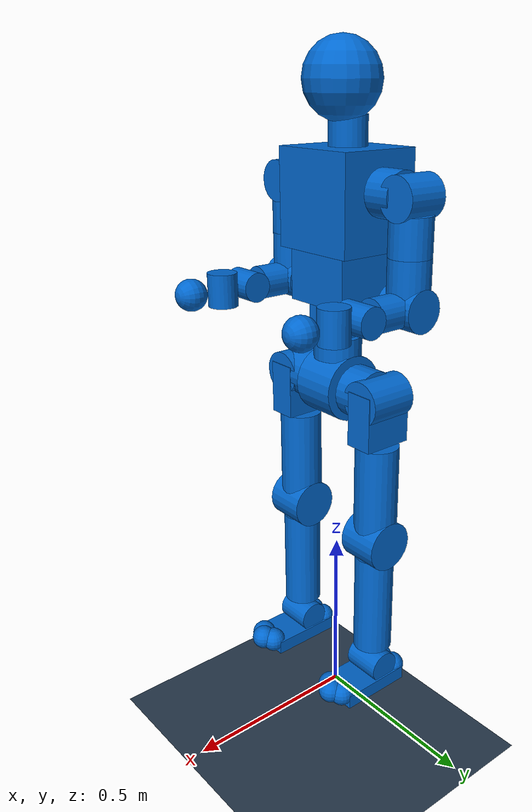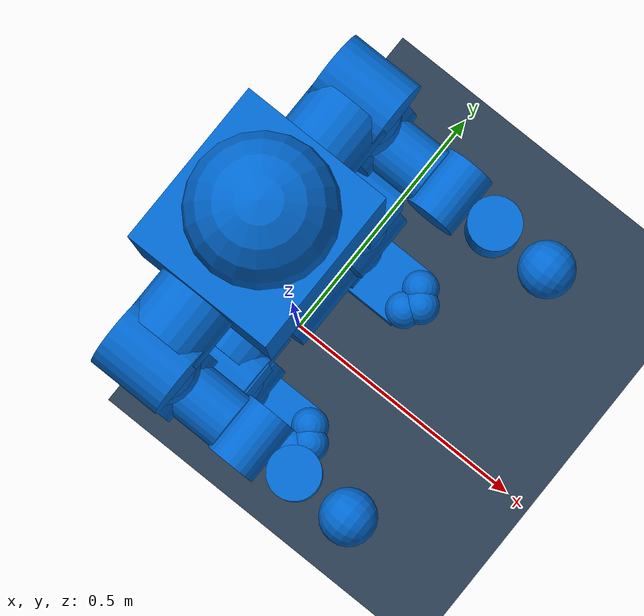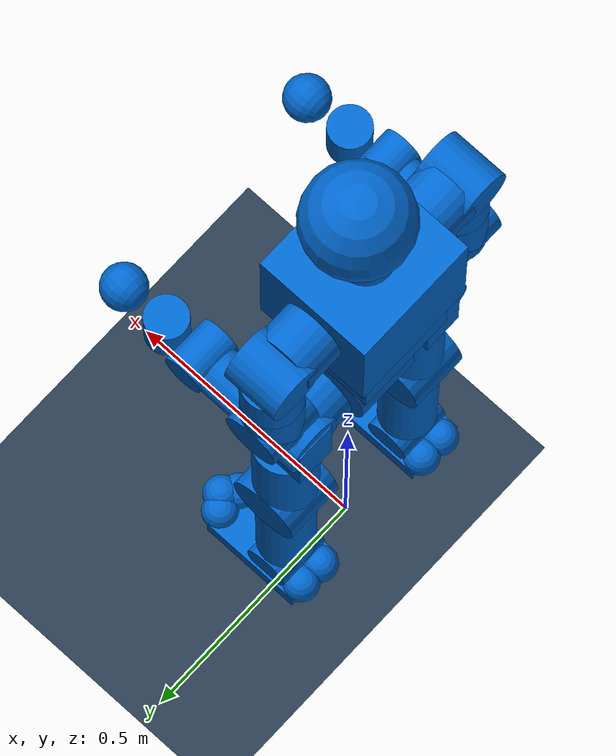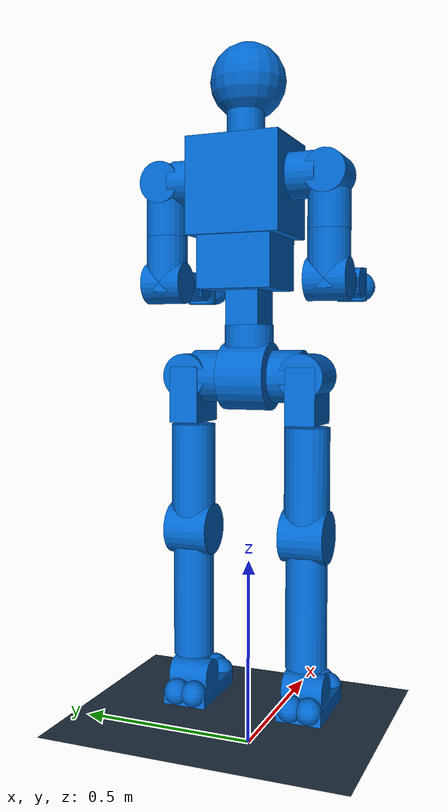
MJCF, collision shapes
<mujoco model="B-20250522">
    <default>
        <default class="robot">
            <default class="motor">
                <joint/>
                <motor/>
            </default>
            <default class="visual">
                <geom material="default_material" contype="0" conaffinity="0" group="2"/>
            </default>
            <default class="collision">
                <geom material="collision_material" condim="3" contype="0" conaffinity="1" solref="0.005 1"
                      friction="1 0.01 0.001" density="0" group="1"/>
            </default>
        </default>
    </default>
    <compiler angle="radian" meshdir="./meshes/"/>
    <compiler autolimits="true"/>
    <asset>
        <material name="default_material" rgba="0.7 0.7 0.7 1"/>
        <material name="collision_material" rgba="0.0 0.4 0.8 0.2"/>
        <mesh name="base" file="base.stl"/>
        <mesh name="waist_z" file="waist_z.stl"/>
        <mesh name="waist_x" file="waist_x.stl"/>
        <mesh name="body" file="body.stl"/>
        <mesh name="shoulder_y" file="shoulder_y.stl"/>
        <mesh name="shoulder_x" file="shoulder_x.stl"/>
        <mesh name="shoulder_z" file="shoulder_z.stl"/>
        <mesh name="elbow" file="elbow.stl"/>
        <mesh name="wrist_z" file="wrist_z.stl"/>
        <mesh name="wrist_y" file="wrist_y.stl"/>
        <mesh name="wrist_x" file="wrist_x.stl"/>
        <mesh name="hip_y" file="hip_y.stl"/>
        <mesh name="hip_x" file="hip_x.stl"/>
        <mesh name="hip_z" file="hip_z.stl"/>
        <mesh name="knee" file="knee.stl"/>
        <mesh name="ankle_y" file="ankle_y.stl"/>
        <mesh name="ankle_x" file="ankle_x.stl"/>

        <texture name="texplane" type="2d" builtin="checker" rgb1=".2 .3 .4" rgb2=".1 0.15 0.2"
                 width="512" height="512"/>
        <material name='MatPlane' reflectance='0.3' texture="texplane" texrepeat="1 1" texuniform="true"/>
    </asset>

    <worldbody>
        <!-- 灯光 -->
        <light directional="true" pos="-0.5 0.5 3" dir="0 0 -1"/>
        <geom name='floor' pos='0 0 0' size='50 50 .125' type='plane' material="MatPlane" condim='3'
              friction="1 0.01 0.01" group="0"/>

        <body name="base_link" pos="0 0. 1." quat="1 0 0 0" childclass="robot">
            <freejoint name="floating_base"/>
            <site name="imu_site" pos="0. 0. -0.068" size="0.005" rgba="1 0 0 1"/>
            <site name="base_site" pos="0 0 0" quat="1 0 0 0"/>

            <geom type="mesh" mesh="base" class="visual"/>
            <geom size="0.09 0.065" quat="0.707107 0.707107 0 0" type="cylinder" class="collision"/>
            <body name="waist_z_link" pos="0 0 0.176">
                <inertial pos="-0.0274148 -0.0025889 0.240264" quat="0.915195 -0.0186902 -0.0284229 0.401573"
                          mass="22.9667"
                          diaginertia="0.542799 0.536002 0.1746"/>
                <joint name="waist_z_joint" pos="0 0 0" axis="0 0 1" range="-3.6652 1.7453"
                       actuatorfrcrange="-107 107"/>
                <geom type="mesh" mesh="waist_z" class="visual"/>
                <geom size="0.065 0.03" pos="0 0 -0.07" type="cylinder" class="collision"/>
                <geom type="mesh" mesh="waist_x" class="visual"/>
                <geom size="0.06 0.045 0.07" pos="0 0 0.03" type="box" class="collision"/>
                <geom pos="0 0 0.114" quat="1 0 0 0" type="mesh" mesh="body" class="visual"/>
                <geom size="0.1 0.1 0.1875" pos="-0.025 0 0.239" type="box" class="collision"/>
                <geom size="0.115 0.125 0.125" pos="-0.025 0 0.314" type="box" class="collision"/>
                <geom size="0.05 0.05" pos="-0.029 0 0.464" type="cylinder" class="collision"/>
                <geom size="0.1" pos="-0.01 0 0.594" class="collision"/>
                <body name="left_shoulder_y_link" pos="-0.03 0.22635 0.339">
                    <inertial pos="-0.00283 -0.01423 -0.00089" quat="0.54528 0.545862 -0.456723 0.442842" mass="1.82215"
                              diaginertia="0.00402614 0.00386441 0.00252945"/>
                    <joint name="left_shoulder_y_joint" pos="0 0 0" axis="0 1 0" range="-3.3161 1.5708"
                           actuatorfrcrange="-107 107"/>
                    <geom quat="0.707107 -0.707107 0 0" type="mesh" mesh="shoulder_y" class="visual"/>
                    <geom size="0.06 0.05" pos="0 -0.075 0" quat="0.707107 0.707107 0 0" type="cylinder"
                          class="collision"/>
                    <body name="left_shoulder_x_link">
                        <inertial pos="0.00263 0 -0.05349" quat="0.680193 -0.193229 -0.193229 0.680193" mass="0.97689"
                                  diaginertia="0.0031 0.00274687 0.00214313"/>
                        <joint name="left_shoulder_x_joint" pos="0 0 0" axis="1 0 0" range="-0.43633 3.5779"
                               actuatorfrcrange="-107 107"/>
                        <geom type="mesh" mesh="shoulder_x" class="visual"/>
                        <geom size="0.055 0.05" pos="0 0 -0.09" type="cylinder" class="collision"/>
                        <geom size="0.055 0.055" quat="0.707107 0 0.707107 0" type="cylinder" class="collision"/>
                        <body name="left_shoulder_z_link" pos="0 0 -0.265">
                            <inertial pos="-0.00978 -0.00126 0.09022" quat="0.999153 0.02114 -0.02756 -0.022052"
                                      mass="1.9789" diaginertia="0.00921773 0.00904872 0.00366355"/>
                            <joint name="left_shoulder_z_joint" pos="0 0 0" axis="0 0 1" range="-2.9671 2.9671"
                                   actuatorfrcrange="-107 107"/>
                            <geom type="mesh" mesh="shoulder_z" class="visual"/>
                            <geom size="0.055 0.075" pos="0 0 0.05" type="cylinder" class="collision"/>
                            <body name="left_elbow_link" quat="0.707107 0 -0.707107 0">
                                <inertial pos="0.000299609 0.000651208 -0.113234"
                                          quat="0.996031 -0.00273113 -0.00201705 0.0889431" mass="4.20881"
                                          diaginertia="0.0464779 0.0462857 0.00517074"/>
                                <joint name="left_elbow_joint" pos="0 0 0" axis="0 1 0" range="-0.767945 1.74533"
                                       actuatorfrcrange="-107 107"/>
                                <geom type="mesh" mesh="elbow" class="visual"/>
                                <geom size="0.055 0.055" quat="0.707107 0.707107 0 0" type="cylinder"
                                      class="collision"/>
                                <geom size="0.045 0.075" pos="0 0 -0.05" type="cylinder" class="collision"/>
                                <geom pos="0 0 -0.16" quat="1 0 0 0" type="mesh" mesh="wrist_z" class="visual"/>
                                <geom size="0.04 0.0475" pos="0 0 -0.16" quat="0.707107 0.707107 0 0" type="cylinder"
                                      class="collision"/>
                                <geom pos="0 0 -0.16" type="mesh" mesh="wrist_y" class="visual"/>
                                <geom size="0.04 0.045" pos="0 0 -0.24" quat="0.707107 0 0.707107 0" type="cylinder"
                                      class="collision"/>
                                <geom pos="0 0 -0.24" quat="1 0 0 0" type="mesh" mesh="wrist_x" class="visual"/>
                                <geom size="0.0425" pos="0 0 -0.3375" class="collision"/>
                            </body>
                        </body>
                    </body>
                </body>

                <body name="right_shoulder_y_link" pos="-0.03 -0.22635 0.339">
                    <inertial pos="-0.00283 0.01423 0.00089" quat="0.537666 0.552004 -0.449614 0.451724" mass="1.82215"
                              diaginertia="0.00402595 0.00386463 0.00252942"/>
                    <joint name="right_shoulder_y_joint" pos="0 0 0" axis="0 1 0" range="-3.3161 1.5708"
                           actuatorfrcrange="-107 107"/>
                    <geom quat="0.707107 0.707107 0 0" type="mesh"
                          mesh="shoulder_y" class="visual"/>
                    <geom size="0.06 0.05" pos="0 0.075 0" quat="0.707107 0.707107 0 0" type="cylinder"
                          class="collision"/>
                    <body name="right_shoulder_x_link">
                        <inertial pos="0.00263 0 -0.05349" quat="0.680193 0.193229 0.193229 0.680193" mass="0.97689"
                                  diaginertia="0.0031 0.00274687 0.00214313"/>
                        <joint name="right_shoulder_x_joint" pos="0 0 0" axis="1 0 0" range="-3.5779 0.43633"
                               actuatorfrcrange="-107 107"/>
                        <geom type="mesh" mesh="shoulder_x" class="visual"/>
                        <geom size="0.055 0.05" pos="0 0 -0.09" type="cylinder" class="collision"/>
                        <geom size="0.055 0.055" quat="0.707107 0 0.707107 0" type="cylinder" class="collision"/>
                        <body name="right_shoulder_z_link" pos="0 0 -0.265">
                            <inertial pos="-0.00978 -0.00126 0.09022" quat="0.999153 0.02114 -0.02756 -0.022052"
                                      mass="1.9789" diaginertia="0.00921773 0.00904872 0.00366355"/>
                            <joint name="right_shoulder_z_joint" pos="0 0 0" axis="0 0 1" range="-2.9671 2.9671"
                                   actuatorfrcrange="-107 107"/>
                            <geom type="mesh" mesh="shoulder_z" class="visual"/>
                            <geom size="0.055 0.075" pos="0 0 0.05" type="cylinder" class="collision"/>
                            <body name="right_elbow_link" quat="0.707107 0 -0.707107 0">
                                <inertial pos="0.000299609 0.000651208 -0.113925"
                                          quat="0.991919 -0.00272957 -0.00196078 0.126826" mass="4.20881"
                                          diaginertia="0.0470904 0.0469528 0.00517075"/>
                                <joint name="right_elbow_joint" pos="0 0 0" axis="0 1 0" range="-0.767945 1.74533"
                                       actuatorfrcrange="-107 107"/>
                                <geom type="mesh" mesh="elbow" class="visual"/>
                                <geom size="0.055 0.055" quat="0.707107 0.707107 0 0" type="cylinder"
                                      class="collision"/>
                                <geom size="0.045 0.075" pos="0 0 -0.05" type="cylinder" class="collision"/>
                                <geom pos="0 0 -0.16" quat="1 0 0 0" type="mesh"
                                      mesh="wrist_z" class="visual"/>
                                <geom size="0.04 0.0475" pos="0 0 -0.16" quat="0.707107 0.707107 0 0" type="cylinder"
                                      class="collision"/>
                                <geom pos="0 0 -0.16" type="mesh"
                                      mesh="wrist_y" class="visual"/>
                                <geom size="0.04 0.045" pos="0 0 -0.24" quat="0.707107 0 0.707107 0" type="cylinder"
                                      class="collision"/>
                                <geom pos="0 0 -0.24" quat="1 0 0 0" type="mesh"
                                      mesh="wrist_x" class="visual"/>
                                <geom size="0.0425" pos="0 0 -0.3375" class="collision"/>
                            </body>
                        </body>
                    </body>
                </body>
            </body>
            <body name="left_hip_y_link" pos="0 0.162 0">
                <inertial pos="-0.00121 -0.01442 -0.0003" quat="0.763796 0.642733 -0.0552737 -0.0213256" mass="1.89927"
                          diaginertia="0.00366741 0.003418 0.00310459"/>
                <joint name="left_hip_y_joint" pos="0 0 0" axis="0 1 0" range="-2.7925 1.5708"
                       actuatorfrcrange="-413 413"/>
                <geom quat="4.48966e-11 1 0 0" type="mesh"
                      mesh="hip_y" class="visual"/>
                <geom size="0.07 0.04" pos="0 -0.05 0" quat="0.707107 0.707107 0 0" type="cylinder" class="collision"
                />
                <geom size="0.06 0.0675" quat="0.707107 0 0.707107 0" type="cylinder" class="collision"/>
                <body name="left_hip_x_link">
                    <inertial pos="0.00153 0.00791 -0.07015" quat="0.702158 -0.0477966 -0.0427511 0.709128"
                              mass="1.75097"
                              diaginertia="0.00954042 0.00724071 0.00534887"/>
                    <joint name="left_hip_x_joint" pos="0 0 0" axis="1 0 0" range="-0.43633 2.618"
                           actuatorfrcrange="-107 107"/>
                    <geom quat="4.48966e-11 0 0 1" type="mesh"
                          mesh="hip_x" class="visual"/>
                    <geom size="0.07 0.04 0.075" pos="0 0 -0.05" type="box" class="collision"/>
                    <body name="left_hip_z_link" pos="0 0 -0.142">
                        <inertial pos="-0.00126 0.00032 -0.04122" quat="0.999978 -0.000703661 0.00164653 0.00637947"
                                  mass="3.59517" diaginertia="0.0492207 0.0476398 0.0126795"/>
                        <joint name="left_hip_z_joint" pos="0 0 0" axis="0 0 1" range="-0.5236 3.6652"
                               actuatorfrcrange="-107 107"/>
                        <geom type="mesh" mesh="hip_z" class="visual"/>
                        <geom size="0.06 0.13" pos="0 0 -0.12" type="cylinder" class="collision"/>
                        <body name="left_knee_link" pos="0 0 -0.278">
                            <inertial pos="-0.00065 0.00024 -0.10231" quat="0.99888 0.002419 0.0146062 -0.0449355"
                                      mass="4.66882" diaginertia="0.0963486 0.0956174 0.00965401"/>
                            <joint name="left_knee_joint" pos="0 0 0" axis="0 1 0" range="-0.17453 2.5307"
                                   actuatorfrcrange="-413 413"/>
                            <geom type="mesh" mesh="knee" class="visual"/>
                            <geom size="0.07 0.06" quat="0.707107 0.707107 0 0" type="cylinder" class="collision"
                            />
                            <geom size="0.055 0.15" pos="0 0 -0.2" type="cylinder" class="collision"/>
                            <body name="left_ankle_y_link" pos="0 0 -0.41">
                                <inertial pos="0.00233 -0.00031 -0.00088" quat="0.147007 0.700314 0.0210594 0.698216"
                                          mass="1.4119" diaginertia="0.00191483 0.00182875 0.00171641"/>
                                <joint name="left_ankle_y_joint" pos="0 0 0" axis="0 1 0" range="-1.0472 0.7854"
                                       actuatorfrcrange="-107 107"/>
                                <geom type="mesh" mesh="ankle_y" class="visual"/>
                                <geom size="0.045 0.055" quat="0.707107 0.707107 0 0" type="cylinder" class="collision"
                                />
                                <body name="left_ankle_x_link">
                                    <inertial pos="0.05253 8e-05 -0.0295" quat="0.480731 0.519412 0.515511 0.48307"
                                              mass="1.78979" diaginertia="0.01056 0.0104471 0.00311293"/>
                                    <joint name="left_ankle_x_joint" pos="0 0 0" axis="1 0 0" range="-0.61087 0.61087"
                                           actuatorfrcrange="-31 31"/>
                                    <geom type="mesh" mesh="ankle_x" class="visual"/>
                                    <geom size="0.105 0.06 0.02" pos="0.035 0 -0.05" type="box" class="collision"
                                    />
                                    <geom size="0.035" pos="0.16 0 -0.03" class="collision"/>
                                    <geom size="0.035" pos="0.14 0.025 -0.035" class="collision"/>
                                    <geom size="0.035" pos="0.14 -0.025 -0.035" class="collision"/>
                                    <geom size="0.035" pos="-0.06 0.025 -0.035" class="collision"/>
                                    <geom size="0.035" pos="-0.06 -0.025 -0.035" class="collision"/>
                                </body>
                            </body>
                        </body>
                    </body>
                </body>
            </body>
            <body name="right_hip_y_link" pos="0 -0.162 0">
                <inertial pos="0.00121 0.01442 -0.0003" quat="0.642733 0.763796 -0.0213256 -0.0552737" mass="1.89927"
                          diaginertia="0.00366741 0.003418 0.00310459"/>
                <joint name="right_hip_y_joint" pos="0 0 0" axis="0 1 0" range="-2.7925 1.5708"
                       actuatorfrcrange="-413 413"/>
                <geom type="mesh" mesh="hip_y" class="visual"/>
                <geom size="0.07 0.04" pos="0 0.05 0" quat="0.707107 0.707107 0 0" type="cylinder" class="collision"/>
                <geom size="0.06 0.0675" quat="0.707107 0 0.707107 0" type="cylinder" class="collision"/>
                <body name="right_hip_x_link">
                    <inertial pos="-0.00153 -0.00791 -0.07015" quat="0.702158 0.0477966 0.0427511 0.709128"
                              mass="1.75097"
                              diaginertia="0.00954042 0.00724071 0.00534887"/>
                    <joint name="right_hip_x_joint" pos="0 0 0" axis="1 0 0" range="-2.618 0.43633"
                           actuatorfrcrange="-107 107"/>
                    <geom type="mesh" mesh="hip_x" class="visual"/>
                    <geom size="0.07 0.04 0.075" pos="0 0 -0.05" type="box" class="collision"/>
                    <body name="right_hip_z_link" pos="0 0 -0.142">
                        <inertial pos="-0.00126 0.00032 -0.04122" quat="0.999979 0.000726316 0.00163749 0.00627329"
                                  mass="3.59517" diaginertia="0.0492206 0.0476398 0.0126795"/>
                        <joint name="right_hip_z_joint" pos="0 0 0" axis="0 0 1" range="-3.6652 0.5236"
                               actuatorfrcrange="-107 107"/>
                        <geom type="mesh" mesh="hip_z" class="visual"/>
                        <geom size="0.06 0.13" pos="0 0 -0.12" type="cylinder" class="collision"/>
                        <body name="right_knee_link" pos="0 0 -0.278">
                            <inertial pos="-0.00065 0.00024 -0.10231" quat="0.99888 0.002419 0.0146062 -0.0449355"
                                      mass="4.66882" diaginertia="0.0963486 0.0956174 0.00965401"/>
                            <joint name="right_knee_joint" pos="0 0 0" axis="0 1 0" range="-0.17453 2.5307"
                                   actuatorfrcrange="-413 413"/>
                            <geom type="mesh" mesh="knee" class="visual"/>
                            <geom size="0.07 0.06" quat="0.707107 0.707107 0 0" type="cylinder" class="collision"
                            />
                            <geom size="0.055 0.15" pos="0 0 -0.2" type="cylinder" class="collision"/>
                            <body name="right_ankle_y_link" pos="0 0 -0.41">
                                <inertial pos="0.00233 -0.00031 0.00088" quat="0.137386 0.700402 -3.02034e-08 0.700402"
                                          mass="1.4119" diaginertia="0.00192392 0.00182 0.00171608"/>
                                <joint name="right_ankle_y_joint" pos="0 0 0" axis="0 1 0" range="-1.0472 0.7854"
                                       actuatorfrcrange="-107 107"/>
                                <geom type="mesh" mesh="ankle_y" class="visual"/>
                                <geom size="0.045 0.055" quat="0.707107 0.707107 0 0" type="cylinder" class="collision"
                                />
                                <body name="right_ankle_x_link">
                                    <inertial pos="0.05253 8e-05 -0.0295" quat="0.480731 0.519412 0.515511 0.48307"
                                              mass="1.78979" diaginertia="0.01056 0.0104471 0.00311293"/>
                                    <joint name="right_ankle_x_joint" pos="0 0 0" axis="1 0 0" range="-0.61087 0.61087"
                                           actuatorfrcrange="-31 31"/>
                                    <geom type="mesh" mesh="ankle_x" class="visual"/>
                                    <geom size="0.105 0.06 0.02" pos="0.035 0 -0.05" type="box" class="collision"
                                    />
                                    <geom size="0.035" pos="0.16 0 -0.03" class="collision"/>
                                    <geom size="0.035" pos="0.14 0.025 -0.035" class="collision"/>
                                    <geom size="0.035" pos="0.14 -0.025 -0.035" class="collision"/>
                                    <geom size="0.035" pos="-0.06 0.025 -0.035" class="collision"/>
                                    <geom size="0.035" pos="-0.06 -0.025 -0.035" class="collision"/>
                                </body>
                            </body>
                        </body>
                    </body>
                </body>
            </body>

        </body>
    </worldbody>
    <actuator>
        <motor name="waist_z_joint_ctrl" joint="waist_z_joint" class="motor" gear="1" ctrlrange="-107 107"/>
        <motor name="left_shoulder_y_joint_ctrl" joint="left_shoulder_y_joint" class="motor" gear="1"
               ctrlrange="-107 107"/>
        <motor name="left_shoulder_x_joint_ctrl" joint="left_shoulder_x_joint" class="motor" gear="1"
               ctrlrange="-107 107"/>
        <motor name="left_shoulder_z_joint_ctrl" joint="left_shoulder_z_joint" class="motor" gear="1"
               ctrlrange="-107 107"/>
        <motor name="left_elbow_joint_ctrl" joint="left_elbow_joint" class="motor" gear="1" ctrlrange="-107 107"/>

        <motor name="right_shoulder_y_joint_ctrl" joint="right_shoulder_y_joint" class="motor" gear="1"
               ctrlrange="-107 107"/>
        <motor name="right_shoulder_x_joint_ctrl" joint="right_shoulder_x_joint" class="motor" gear="1"
               ctrlrange="-107 107"/>
        <motor name="right_shoulder_z_joint_ctrl" joint="right_shoulder_z_joint" class="motor" gear="1"
               ctrlrange="-107 107"/>
        <motor name="right_elbow_joint_ctrl" joint="right_elbow_joint" class="motor" gear="1" ctrlrange="-107 107"/>

        <motor name="left_hip_y_joint_ctrl" joint="left_hip_y_joint" class="motor" gear="1" ctrlrange="-413 413"/>
        <motor name="left_hip_x_joint_ctrl" joint="left_hip_x_joint" class="motor" gear="1" ctrlrange="-107 107"/>
        <motor name="left_hip_z_joint_ctrl" joint="left_hip_z_joint" class="motor" gear="1" ctrlrange="-107 107"/>
        <motor name="left_knee_joint_ctrl" joint="left_knee_joint" class="motor" gear="1" ctrlrange="-413 413"/>
        <motor name="left_ankle_y_joint_ctrl" joint="left_ankle_y_joint" class="motor" gear="1" ctrlrange="-107 107"/>
        <motor name="left_ankle_x_joint_ctrl" joint="left_ankle_x_joint" class="motor" gear="1" ctrlrange="-31 31"/>

        <motor name="right_hip_y_joint_ctrl" joint="right_hip_y_joint" class="motor" gear="1" ctrlrange="-413 413"/>
        <motor name="right_hip_x_joint_ctrl" joint="right_hip_x_joint" class="motor" gear="1" ctrlrange="-107 107"/>
        <motor name="right_hip_z_joint_ctrl" joint="right_hip_z_joint" class="motor" gear="1" ctrlrange="-107 107"/>
        <motor name="right_knee_joint_ctrl" joint="right_knee_joint" class="motor" gear="1" ctrlrange="-413 413"/>
        <motor name="right_ankle_y_joint_ctrl" joint="right_ankle_y_joint" class="motor" gear="1" ctrlrange="-107 107"/>
        <motor name="right_ankle_x_joint_ctrl" joint="right_ankle_x_joint" class="motor" gear="1" ctrlrange="-31 31"/>
    </actuator>

    <contact>
        <exclude body1="base_link" body2="waist_z_link"/>

        <exclude body1="waist_z_link" body2="left_shoulder_y_link"/>
        <exclude body1="left_shoulder_y_link" body2="left_shoulder_x_link"/>
        <exclude body1="left_shoulder_x_link" body2="left_shoulder_z_link"/>
        <exclude body1="left_shoulder_x_link" body2="left_shoulder_z_link"/>
        <exclude body1="left_shoulder_z_link" body2="left_elbow_link"/>

        <exclude body1="waist_z_link" body2="right_shoulder_y_link"/>
        <exclude body1="right_shoulder_y_link" body2="right_shoulder_x_link"/>
        <exclude body1="right_shoulder_x_link" body2="right_shoulder_z_link"/>
        <exclude body1="right_shoulder_x_link" body2="right_shoulder_z_link"/>
        <exclude body1="right_shoulder_z_link" body2="right_elbow_link"/>

        <exclude body1="base_link" body2="left_hip_y_link"/>
        <exclude body1="left_hip_y_link" body2="left_hip_x_link"/>
        <exclude body1="left_hip_x_link" body2="left_hip_z_link"/>
        <exclude body1="left_hip_z_link" body2="left_knee_link"/>
        <exclude body1="left_knee_link" body2="left_ankle_y_link"/>
        <exclude body1="left_ankle_y_link" body2="left_ankle_x_link"/>

        <exclude body1="base_link" body2="right_hip_y_link"/>
        <exclude body1="right_hip_y_link" body2="right_hip_x_link"/>
        <exclude body1="right_hip_x_link" body2="right_hip_z_link"/>
        <exclude body1="right_hip_z_link" body2="right_knee_link"/>
        <exclude body1="right_knee_link" body2="right_ankle_y_link"/>
        <exclude body1="right_ankle_y_link" body2="right_ankle_x_link"/>
    </contact>

    <sensor>
        <framequat name="base_quat" objtype="site" objname="base_site"/>
        <accelerometer site="imu_site"/>
        <gyro site="imu_site"/>

    </sensor>

</mujoco>
